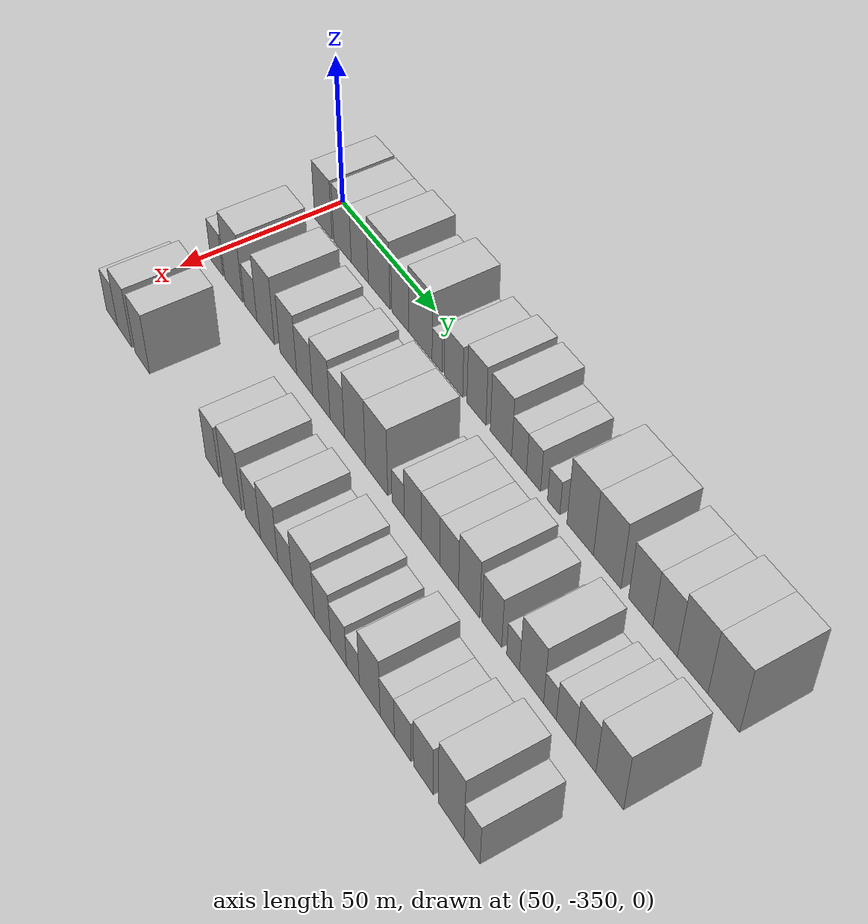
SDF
<sdf version="1.6">
 <world name="default">
  <model name="building_1">
   <static>1</static>
   <pose>50.0000 -343.0703 0 0.000000 0.000000 0.000000</pose>
   <link name="link">
    <pose>0 0 10.50 0 0 0</pose>
    <collision name="collision"><geometry><box><size>20.0000 9.8595 21.0000</size></box></geometry></collision>
    <visual name="visual">
     <cast_shadows>0</cast_shadows>
     <geometry><box><size>20.0000 9.8595 21.0000</size></box></geometry>
     <material>
      <script>
       <uri>model://HANNAS_wall/materials/scripts</uri>
       <uri>model://HANNAS_wall/materials/textures</uri>
       <name>vrc/HANNAS_wall</name>
      </script>
     </material>
    </visual>
   </link>
  </model>
  <model name="building_2">
   <static>1</static>
   <pose>50.0000 -332.2785 0 0.000000 0.000000 0.000000</pose>
   <link name="link">
    <pose>0 0 10.50 0 0 0</pose>
    <collision name="collision"><geometry><box><size>20.0000 9.7241 21.0000</size></box></geometry></collision>
    <visual name="visual">
     <cast_shadows>0</cast_shadows>
     <geometry><box><size>20.0000 9.7241 21.0000</size></box></geometry>
     <material>
      <script>
       <uri>model://HANNAS_wall/materials/scripts</uri>
       <uri>model://HANNAS_wall/materials/textures</uri>
       <name>vrc/HANNAS_wall</name>
      </script>
     </material>
    </visual>
   </link>
  </model>
  <model name="building_3">
   <static>1</static>
   <pose>50.0000 -322.7978 0 0.000000 0.000000 0.000000</pose>
   <link name="link">
    <pose>0 0 10.50 0 0 0</pose>
    <collision name="collision"><geometry><box><size>20.0000 9.2373 21.0000</size></box></geometry></collision>
    <visual name="visual">
     <cast_shadows>0</cast_shadows>
     <geometry><box><size>20.0000 9.2373 21.0000</size></box></geometry>
     <material>
      <script>
       <uri>model://HANNAS_wall/materials/scripts</uri>
       <uri>model://HANNAS_wall/materials/textures</uri>
       <name>vrc/HANNAS_wall</name>
      </script>
     </material>
    </visual>
   </link>
  </model>
  <model name="building_4">
   <static>1</static>
   <pose>50.0000 -312.4608 0 0.000000 0.000000 0.000000</pose>
   <link name="link">
    <pose>0 0 12.00 0 0 0</pose>
    <collision name="collision"><geometry><box><size>20.0000 11.4368 24.0000</size></box></geometry></collision>
    <visual name="visual">
     <cast_shadows>0</cast_shadows>
     <geometry><box><size>20.0000 11.4368 24.0000</size></box></geometry>
     <material>
      <script>
       <uri>model://HANNAS_wall/materials/scripts</uri>
       <uri>model://HANNAS_wall/materials/textures</uri>
       <name>vrc/HANNAS_wall</name>
      </script>
     </material>
    </visual>
   </link>
  </model>
  <model name="building_5">
   <static>1</static>
   <pose>50.0000 -301.3819 0 0.000000 0.000000 0.000000</pose>
   <link name="link">
    <pose>0 0 9.00 0 0 0</pose>
    <collision name="collision"><geometry><box><size>20.0000 8.7210 18.0000</size></box></geometry></collision>
    <visual name="visual">
     <cast_shadows>0</cast_shadows>
     <geometry><box><size>20.0000 8.7210 18.0000</size></box></geometry>
     <material>
      <script>
       <uri>model://HANNAS_wall/materials/scripts</uri>
       <uri>model://HANNAS_wall/materials/textures</uri>
       <name>vrc/HANNAS_wall</name>
      </script>
     </material>
    </visual>
   </link>
  </model>
  <model name="building_6">
   <static>1</static>
   <pose>50.0000 -291.1596 0 0.000000 0.000000 0.000000</pose>
   <link name="link">
    <pose>0 0 12.00 0 0 0</pose>
    <collision name="collision"><geometry><box><size>20.0000 11.7235 24.0000</size></box></geometry></collision>
    <visual name="visual">
     <cast_shadows>0</cast_shadows>
     <geometry><box><size>20.0000 11.7235 24.0000</size></box></geometry>
     <material>
      <script>
       <uri>model://HANNAS_wall/materials/scripts</uri>
       <uri>model://HANNAS_wall/materials/textures</uri>
       <name>vrc/HANNAS_wall</name>
      </script>
     </material>
    </visual>
   </link>
  </model>
  <model name="building_7">
   <static>1</static>
   <pose>50.0000 -282.7952 0 0.000000 0.000000 0.000000</pose>
   <link name="link">
    <pose>0 0 6.00 0 0 0</pose>
    <collision name="collision"><geometry><box><size>20.0000 5.0053 12.0000</size></box></geometry></collision>
    <visual name="visual">
     <cast_shadows>0</cast_shadows>
     <geometry><box><size>20.0000 5.0053 12.0000</size></box></geometry>
     <material>
      <script>
       <uri>model://HANNAS_wall/materials/scripts</uri>
       <uri>model://HANNAS_wall/materials/textures</uri>
       <name>vrc/HANNAS_wall</name>
      </script>
     </material>
    </visual>
   </link>
  </model>
  <model name="building_8">
   <static>1</static>
   <pose>50.0000 -274.8608 0 0.000000 0.000000 0.000000</pose>
   <link name="link">
    <pose>0 0 9.00 0 0 0</pose>
    <collision name="collision"><geometry><box><size>20.0000 8.8636 18.0000</size></box></geometry></collision>
    <visual name="visual">
     <cast_shadows>0</cast_shadows>
     <geometry><box><size>20.0000 8.8636 18.0000</size></box></geometry>
     <material>
      <script>
       <uri>model://HANNAS_wall/materials/scripts</uri>
       <uri>model://HANNAS_wall/materials/textures</uri>
       <name>vrc/HANNAS_wall</name>
      </script>
     </material>
    </visual>
   </link>
  </model>
  <model name="building_9">
   <static>1</static>
   <pose>50.0000 -263.9722 0 0.000000 0.000000 0.000000</pose>
   <link name="link">
    <pose>0 0 10.50 0 0 0</pose>
    <collision name="collision"><geometry><box><size>20.0000 8.9136 21.0000</size></box></geometry></collision>
    <visual name="visual">
     <cast_shadows>0</cast_shadows>
     <geometry><box><size>20.0000 8.9136 21.0000</size></box></geometry>
     <material>
      <script>
       <uri>model://HANNAS_wall/materials/scripts</uri>
       <uri>model://HANNAS_wall/materials/textures</uri>
       <name>vrc/HANNAS_wall</name>
      </script>
     </material>
    </visual>
   </link>
  </model>
  <model name="building_10">
   <static>1</static>
   <pose>50.0000 -252.6601 0 0.000000 0.000000 0.000000</pose>
   <link name="link">
    <pose>0 0 10.50 0 0 0</pose>
    <collision name="collision"><geometry><box><size>20.0000 9.7105 21.0000</size></box></geometry></collision>
    <visual name="visual">
     <cast_shadows>0</cast_shadows>
     <geometry><box><size>20.0000 9.7105 21.0000</size></box></geometry>
     <material>
      <script>
       <uri>model://HANNAS_wall/materials/scripts</uri>
       <uri>model://HANNAS_wall/materials/textures</uri>
       <name>vrc/HANNAS_wall</name>
      </script>
     </material>
    </visual>
   </link>
  </model>
  <model name="building_11">
   <static>1</static>
   <pose>50.0000 -244.5141 0 0.000000 0.000000 0.000000</pose>
   <link name="link">
    <pose>0 0 7.50 0 0 0</pose>
    <collision name="collision"><geometry><box><size>20.0000 6.5817 15.0000</size></box></geometry></collision>
    <visual name="visual">
     <cast_shadows>0</cast_shadows>
     <geometry><box><size>20.0000 6.5817 15.0000</size></box></geometry>
     <material>
      <script>
       <uri>model://HANNAS_wall/materials/scripts</uri>
       <uri>model://HANNAS_wall/materials/textures</uri>
       <name>vrc/HANNAS_wall</name>
      </script>
     </material>
    </visual>
   </link>
  </model>
  <model name="building_12">
   <static>1</static>
   <pose>50.0000 -238.1243 0 0.000000 0.000000 0.000000</pose>
   <link name="link">
    <pose>0 0 7.50 0 0 0</pose>
    <collision name="collision"><geometry><box><size>20.0000 6.1979 15.0000</size></box></geometry></collision>
    <visual name="visual">
     <cast_shadows>0</cast_shadows>
     <geometry><box><size>20.0000 6.1979 15.0000</size></box></geometry>
     <material>
      <script>
       <uri>model://HANNAS_wall/materials/scripts</uri>
       <uri>model://HANNAS_wall/materials/textures</uri>
       <name>vrc/HANNAS_wall</name>
      </script>
     </material>
    </visual>
   </link>
  </model>
  <model name="building_13">
   <static>1</static>
   <pose>50.0000 -229.4065 0 0.000000 0.000000 0.000000</pose>
   <link name="link">
    <pose>0 0 6.00 0 0 0</pose>
    <collision name="collision"><geometry><box><size>20.0000 5.2378 12.0000</size></box></geometry></collision>
    <visual name="visual">
     <cast_shadows>0</cast_shadows>
     <geometry><box><size>20.0000 5.2378 12.0000</size></box></geometry>
     <material>
      <script>
       <uri>model://HANNAS_wall/materials/scripts</uri>
       <uri>model://HANNAS_wall/materials/textures</uri>
       <name>vrc/HANNAS_wall</name>
      </script>
     </material>
    </visual>
   </link>
  </model>
  <model name="building_14">
   <static>1</static>
   <pose>50.0000 -218.2956 0 0.000000 0.000000 0.000000</pose>
   <link name="link">
    <pose>0 0 12.00 0 0 0</pose>
    <collision name="collision"><geometry><box><size>20.0000 10.9840 24.0000</size></box></geometry></collision>
    <visual name="visual">
     <cast_shadows>0</cast_shadows>
     <geometry><box><size>20.0000 10.9840 24.0000</size></box></geometry>
     <material>
      <script>
       <uri>model://HANNAS_wall/materials/scripts</uri>
       <uri>model://HANNAS_wall/materials/textures</uri>
       <name>vrc/HANNAS_wall</name>
      </script>
     </material>
    </visual>
   </link>
  </model>
  <model name="building_15">
   <static>1</static>
   <pose>50.0000 -207.2777 0 0.000000 0.000000 0.000000</pose>
   <link name="link">
    <pose>0 0 12.00 0 0 0</pose>
    <collision name="collision"><geometry><box><size>20.0000 11.0517 24.0000</size></box></geometry></collision>
    <visual name="visual">
     <cast_shadows>0</cast_shadows>
     <geometry><box><size>20.0000 11.0517 24.0000</size></box></geometry>
     <material>
      <script>
       <uri>model://HANNAS_wall/materials/scripts</uri>
       <uri>model://HANNAS_wall/materials/textures</uri>
       <name>vrc/HANNAS_wall</name>
      </script>
     </material>
    </visual>
   </link>
  </model>
  <model name="building_16">
   <static>1</static>
   <pose>50.0000 -194.0915 0 0.000000 0.000000 0.000000</pose>
   <link name="link">
    <pose>0 0 10.50 0 0 0</pose>
    <collision name="collision"><geometry><box><size>20.0000 9.3208 21.0000</size></box></geometry></collision>
    <visual name="visual">
     <cast_shadows>0</cast_shadows>
     <geometry><box><size>20.0000 9.3208 21.0000</size></box></geometry>
     <material>
      <script>
       <uri>model://HANNAS_wall/materials/scripts</uri>
       <uri>model://HANNAS_wall/materials/textures</uri>
       <name>vrc/HANNAS_wall</name>
      </script>
     </material>
    </visual>
   </link>
  </model>
  <model name="building_17">
   <static>1</static>
   <pose>50.0000 -184.8007 0 0.000000 0.000000 0.000000</pose>
   <link name="link">
    <pose>0 0 10.50 0 0 0</pose>
    <collision name="collision"><geometry><box><size>20.0000 9.2608 21.0000</size></box></geometry></collision>
    <visual name="visual">
     <cast_shadows>0</cast_shadows>
     <geometry><box><size>20.0000 9.2608 21.0000</size></box></geometry>
     <material>
      <script>
       <uri>model://HANNAS_wall/materials/scripts</uri>
       <uri>model://HANNAS_wall/materials/textures</uri>
       <name>vrc/HANNAS_wall</name>
      </script>
     </material>
    </visual>
   </link>
  </model>
  <model name="building_18">
   <static>1</static>
   <pose>50.0000 -174.6020 0 0.000000 0.000000 0.000000</pose>
   <link name="link">
    <pose>0 0 12.00 0 0 0</pose>
    <collision name="collision"><geometry><box><size>20.0000 11.1366 24.0000</size></box></geometry></collision>
    <visual name="visual">
     <cast_shadows>0</cast_shadows>
     <geometry><box><size>20.0000 11.1366 24.0000</size></box></geometry>
     <material>
      <script>
       <uri>model://HANNAS_wall/materials/scripts</uri>
       <uri>model://HANNAS_wall/materials/textures</uri>
       <name>vrc/HANNAS_wall</name>
      </script>
     </material>
    </visual>
   </link>
  </model>
  <model name="building_19">
   <static>1</static>
   <pose>50.0000 -163.4128 0 0.000000 0.000000 0.000000</pose>
   <link name="link">
    <pose>0 0 12.00 0 0 0</pose>
    <collision name="collision"><geometry><box><size>20.0000 11.2418 24.0000</size></box></geometry></collision>
    <visual name="visual">
     <cast_shadows>0</cast_shadows>
     <geometry><box><size>20.0000 11.2418 24.0000</size></box></geometry>
     <material>
      <script>
       <uri>model://HANNAS_wall/materials/scripts</uri>
       <uri>model://HANNAS_wall/materials/textures</uri>
       <name>vrc/HANNAS_wall</name>
      </script>
     </material>
    </visual>
   </link>
  </model>
  <model name="building_77">
   <static>1</static>
   <pose>82.0000 -344.3232 0 0.000000 0.000000 0.000000</pose>
   <link name="link">
    <pose>0 0 7.50 0 0 0</pose>
    <collision name="collision"><geometry><box><size>20.0000 7.3536 15.0000</size></box></geometry></collision>
    <visual name="visual">
     <cast_shadows>0</cast_shadows>
     <geometry><box><size>20.0000 7.3536 15.0000</size></box></geometry>
     <material>
      <script>
       <uri>model://HANNAS_wall/materials/scripts</uri>
       <uri>model://HANNAS_wall/materials/textures</uri>
       <name>vrc/HANNAS_wall</name>
      </script>
     </material>
    </visual>
   </link>
  </model>
  <model name="building_78">
   <static>1</static>
   <pose>82.0000 -334.3234 0 0.000000 0.000000 0.000000</pose>
   <link name="link">
    <pose>0 0 12.00 0 0 0</pose>
    <collision name="collision"><geometry><box><size>20.0000 10.6460 24.0000</size></box></geometry></collision>
    <visual name="visual">
     <cast_shadows>0</cast_shadows>
     <geometry><box><size>20.0000 10.6460 24.0000</size></box></geometry>
     <material>
      <script>
       <uri>model://HANNAS_wall/materials/scripts</uri>
       <uri>model://HANNAS_wall/materials/textures</uri>
       <name>vrc/HANNAS_wall</name>
      </script>
     </material>
    </visual>
   </link>
  </model>
  <model name="building_79">
   <static>1</static>
   <pose>82.0000 -324.4425 0 0.000000 0.000000 0.000000</pose>
   <link name="link">
    <pose>0 0 7.50 0 0 0</pose>
    <collision name="collision"><geometry><box><size>20.0000 7.1158 15.0000</size></box></geometry></collision>
    <visual name="visual">
     <cast_shadows>0</cast_shadows>
     <geometry><box><size>20.0000 7.1158 15.0000</size></box></geometry>
     <material>
      <script>
       <uri>model://HANNAS_wall/materials/scripts</uri>
       <uri>model://HANNAS_wall/materials/textures</uri>
       <name>vrc/HANNAS_wall</name>
      </script>
     </material>
    </visual>
   </link>
  </model>
  <model name="building_80">
   <static>1</static>
   <pose>82.0000 -315.9269 0 0.000000 0.000000 0.000000</pose>
   <link name="link">
    <pose>0 0 12.00 0 0 0</pose>
    <collision name="collision"><geometry><box><size>20.0000 9.9154 24.0000</size></box></geometry></collision>
    <visual name="visual">
     <cast_shadows>0</cast_shadows>
     <geometry><box><size>20.0000 9.9154 24.0000</size></box></geometry>
     <material>
      <script>
       <uri>model://HANNAS_wall/materials/scripts</uri>
       <uri>model://HANNAS_wall/materials/textures</uri>
       <name>vrc/HANNAS_wall</name>
      </script>
     </material>
    </visual>
   </link>
  </model>
  <model name="building_81">
   <static>1</static>
   <pose>82.0000 -303.4407 0 0.000000 0.000000 0.000000</pose>
   <link name="link">
    <pose>0 0 10.50 0 0 0</pose>
    <collision name="collision"><geometry><box><size>20.0000 9.0570 21.0000</size></box></geometry></collision>
    <visual name="visual">
     <cast_shadows>0</cast_shadows>
     <geometry><box><size>20.0000 9.0570 21.0000</size></box></geometry>
     <material>
      <script>
       <uri>model://HANNAS_wall/materials/scripts</uri>
       <uri>model://HANNAS_wall/materials/textures</uri>
       <name>vrc/HANNAS_wall</name>
      </script>
     </material>
    </visual>
   </link>
  </model>
  <model name="building_82">
   <static>1</static>
   <pose>82.0000 -294.6639 0 0.000000 0.000000 0.000000</pose>
   <link name="link">
    <pose>0 0 9.00 0 0 0</pose>
    <collision name="collision"><geometry><box><size>20.0000 8.4966 18.0000</size></box></geometry></collision>
    <visual name="visual">
     <cast_shadows>0</cast_shadows>
     <geometry><box><size>20.0000 8.4966 18.0000</size></box></geometry>
     <material>
      <script>
       <uri>model://HANNAS_wall/materials/scripts</uri>
       <uri>model://HANNAS_wall/materials/textures</uri>
       <name>vrc/HANNAS_wall</name>
      </script>
     </material>
    </visual>
   </link>
  </model>
  <model name="building_83">
   <static>1</static>
   <pose>82.0000 -285.8758 0 0.000000 0.000000 0.000000</pose>
   <link name="link">
    <pose>0 0 10.50 0 0 0</pose>
    <collision name="collision"><geometry><box><size>20.0000 9.0797 21.0000</size></box></geometry></collision>
    <visual name="visual">
     <cast_shadows>0</cast_shadows>
     <geometry><box><size>20.0000 9.0797 21.0000</size></box></geometry>
     <material>
      <script>
       <uri>model://HANNAS_wall/materials/scripts</uri>
       <uri>model://HANNAS_wall/materials/textures</uri>
       <name>vrc/HANNAS_wall</name>
      </script>
     </material>
    </visual>
   </link>
  </model>
  <model name="building_84">
   <static>1</static>
   <pose>82.0000 -277.6684 0 0.000000 0.000000 0.000000</pose>
   <link name="link">
    <pose>0 0 9.00 0 0 0</pose>
    <collision name="collision"><geometry><box><size>20.0000 7.3350 18.0000</size></box></geometry></collision>
    <visual name="visual">
     <cast_shadows>0</cast_shadows>
     <geometry><box><size>20.0000 7.3350 18.0000</size></box></geometry>
     <material>
      <script>
       <uri>model://HANNAS_wall/materials/scripts</uri>
       <uri>model://HANNAS_wall/materials/textures</uri>
       <name>vrc/HANNAS_wall</name>
      </script>
     </material>
    </visual>
   </link>
  </model>
  <model name="building_85">
   <static>1</static>
   <pose>82.0000 -268.7674 0 0.000000 0.000000 0.000000</pose>
   <link name="link">
    <pose>0 0 12.00 0 0 0</pose>
    <collision name="collision"><geometry><box><size>20.0000 10.4669 24.0000</size></box></geometry></collision>
    <visual name="visual">
     <cast_shadows>0</cast_shadows>
     <geometry><box><size>20.0000 10.4669 24.0000</size></box></geometry>
     <material>
      <script>
       <uri>model://HANNAS_wall/materials/scripts</uri>
       <uri>model://HANNAS_wall/materials/textures</uri>
       <name>vrc/HANNAS_wall</name>
      </script>
     </material>
    </visual>
   </link>
  </model>
  <model name="building_86">
   <static>1</static>
   <pose>82.0000 -258.1873 0 0.000000 0.000000 0.000000</pose>
   <link name="link">
    <pose>0 0 12.00 0 0 0</pose>
    <collision name="collision"><geometry><box><size>20.0000 10.6932 24.0000</size></box></geometry></collision>
    <visual name="visual">
     <cast_shadows>0</cast_shadows>
     <geometry><box><size>20.0000 10.6932 24.0000</size></box></geometry>
     <material>
      <script>
       <uri>model://HANNAS_wall/materials/scripts</uri>
       <uri>model://HANNAS_wall/materials/textures</uri>
       <name>vrc/HANNAS_wall</name>
      </script>
     </material>
    </visual>
   </link>
  </model>
  <model name="building_87">
   <static>1</static>
   <pose>82.0000 -247.9619 0 0.000000 0.000000 0.000000</pose>
   <link name="link">
    <pose>0 0 6.00 0 0 0</pose>
    <collision name="collision"><geometry><box><size>20.0000 5.7576 12.0000</size></box></geometry></collision>
    <visual name="visual">
     <cast_shadows>0</cast_shadows>
     <geometry><box><size>20.0000 5.7576 12.0000</size></box></geometry>
     <material>
      <script>
       <uri>model://HANNAS_wall/materials/scripts</uri>
       <uri>model://HANNAS_wall/materials/textures</uri>
       <name>vrc/HANNAS_wall</name>
      </script>
     </material>
    </visual>
   </link>
  </model>
  <model name="building_88">
   <static>1</static>
   <pose>82.0000 -241.1539 0 0.000000 0.000000 0.000000</pose>
   <link name="link">
    <pose>0 0 9.00 0 0 0</pose>
    <collision name="collision"><geometry><box><size>20.0000 7.8585 18.0000</size></box></geometry></collision>
    <visual name="visual">
     <cast_shadows>0</cast_shadows>
     <geometry><box><size>20.0000 7.8585 18.0000</size></box></geometry>
     <material>
      <script>
       <uri>model://HANNAS_wall/materials/scripts</uri>
       <uri>model://HANNAS_wall/materials/textures</uri>
       <name>vrc/HANNAS_wall</name>
      </script>
     </material>
    </visual>
   </link>
  </model>
  <model name="building_89">
   <static>1</static>
   <pose>82.0000 -233.0622 0 0.000000 0.000000 0.000000</pose>
   <link name="link">
    <pose>0 0 9.00 0 0 0</pose>
    <collision name="collision"><geometry><box><size>20.0000 8.3249 18.0000</size></box></geometry></collision>
    <visual name="visual">
     <cast_shadows>0</cast_shadows>
     <geometry><box><size>20.0000 8.3249 18.0000</size></box></geometry>
     <material>
      <script>
       <uri>model://HANNAS_wall/materials/scripts</uri>
       <uri>model://HANNAS_wall/materials/textures</uri>
       <name>vrc/HANNAS_wall</name>
      </script>
     </material>
    </visual>
   </link>
  </model>
  <model name="building_90">
   <static>1</static>
   <pose>82.0000 -224.7668 0 0.000000 0.000000 0.000000</pose>
   <link name="link">
    <pose>0 0 9.00 0 0 0</pose>
    <collision name="collision"><geometry><box><size>20.0000 8.2658 18.0000</size></box></geometry></collision>
    <visual name="visual">
     <cast_shadows>0</cast_shadows>
     <geometry><box><size>20.0000 8.2658 18.0000</size></box></geometry>
     <material>
      <script>
       <uri>model://HANNAS_wall/materials/scripts</uri>
       <uri>model://HANNAS_wall/materials/textures</uri>
       <name>vrc/HANNAS_wall</name>
      </script>
     </material>
    </visual>
   </link>
  </model>
  <model name="building_91">
   <static>1</static>
   <pose>82.0000 -216.1169 0 0.000000 0.000000 0.000000</pose>
   <link name="link">
    <pose>0 0 10.50 0 0 0</pose>
    <collision name="collision"><geometry><box><size>20.0000 9.0340 21.0000</size></box></geometry></collision>
    <visual name="visual">
     <cast_shadows>0</cast_shadows>
     <geometry><box><size>20.0000 9.0340 21.0000</size></box></geometry>
     <material>
      <script>
       <uri>model://HANNAS_wall/materials/scripts</uri>
       <uri>model://HANNAS_wall/materials/textures</uri>
       <name>vrc/HANNAS_wall</name>
      </script>
     </material>
    </visual>
   </link>
  </model>
  <model name="building_92">
   <static>1</static>
   <pose>82.0000 -206.4828 0 0.000000 0.000000 0.000000</pose>
   <link name="link">
    <pose>0 0 9.00 0 0 0</pose>
    <collision name="collision"><geometry><box><size>20.0000 8.2342 18.0000</size></box></geometry></collision>
    <visual name="visual">
     <cast_shadows>0</cast_shadows>
     <geometry><box><size>20.0000 8.2342 18.0000</size></box></geometry>
     <material>
      <script>
       <uri>model://HANNAS_wall/materials/scripts</uri>
       <uri>model://HANNAS_wall/materials/textures</uri>
       <name>vrc/HANNAS_wall</name>
      </script>
     </material>
    </visual>
   </link>
  </model>
  <model name="building_93">
   <static>1</static>
   <pose>82.0000 -197.7329 0 0.000000 0.000000 0.000000</pose>
   <link name="link">
    <pose>0 0 6.00 0 0 0</pose>
    <collision name="collision"><geometry><box><size>20.0000 5.2657 12.0000</size></box></geometry></collision>
    <visual name="visual">
     <cast_shadows>0</cast_shadows>
     <geometry><box><size>20.0000 5.2657 12.0000</size></box></geometry>
     <material>
      <script>
       <uri>model://HANNAS_wall/materials/scripts</uri>
       <uri>model://HANNAS_wall/materials/textures</uri>
       <name>vrc/HANNAS_wall</name>
      </script>
     </material>
    </visual>
   </link>
  </model>
  <model name="building_94">
   <static>1</static>
   <pose>82.0000 -190.3103 0 0.000000 0.000000 0.000000</pose>
   <link name="link">
    <pose>0 0 10.50 0 0 0</pose>
    <collision name="collision"><geometry><box><size>20.0000 9.5794 21.0000</size></box></geometry></collision>
    <visual name="visual">
     <cast_shadows>0</cast_shadows>
     <geometry><box><size>20.0000 9.5794 21.0000</size></box></geometry>
     <material>
      <script>
       <uri>model://HANNAS_wall/materials/scripts</uri>
       <uri>model://HANNAS_wall/materials/textures</uri>
       <name>vrc/HANNAS_wall</name>
      </script>
     </material>
    </visual>
   </link>
  </model>
  <model name="building_95">
   <static>1</static>
   <pose>82.0000 -183.0500 0 0.000000 0.000000 0.000000</pose>
   <link name="link">
    <pose>0 0 6.00 0 0 0</pose>
    <collision name="collision"><geometry><box><size>20.0000 4.9412 12.0000</size></box></geometry></collision>
    <visual name="visual">
     <cast_shadows>0</cast_shadows>
     <geometry><box><size>20.0000 4.9412 12.0000</size></box></geometry>
     <material>
      <script>
       <uri>model://HANNAS_wall/materials/scripts</uri>
       <uri>model://HANNAS_wall/materials/textures</uri>
       <name>vrc/HANNAS_wall</name>
      </script>
     </material>
    </visual>
   </link>
  </model>
  <model name="building_96">
   <static>1</static>
   <pose>82.0000 -176.9291 0 0.000000 0.000000 0.000000</pose>
   <link name="link">
    <pose>0 0 7.50 0 0 0</pose>
    <collision name="collision"><geometry><box><size>20.0000 7.3008 15.0000</size></box></geometry></collision>
    <visual name="visual">
     <cast_shadows>0</cast_shadows>
     <geometry><box><size>20.0000 7.3008 15.0000</size></box></geometry>
     <material>
      <script>
       <uri>model://HANNAS_wall/materials/scripts</uri>
       <uri>model://HANNAS_wall/materials/textures</uri>
       <name>vrc/HANNAS_wall</name>
      </script>
     </material>
    </visual>
   </link>
  </model>
  <model name="building_97">
   <static>1</static>
   <pose>82.0000 -169.4720 0 0.000000 0.000000 0.000000</pose>
   <link name="link">
    <pose>0 0 9.00 0 0 0</pose>
    <collision name="collision"><geometry><box><size>20.0000 7.6135 18.0000</size></box></geometry></collision>
    <visual name="visual">
     <cast_shadows>0</cast_shadows>
     <geometry><box><size>20.0000 7.6135 18.0000</size></box></geometry>
     <material>
      <script>
       <uri>model://HANNAS_wall/materials/scripts</uri>
       <uri>model://HANNAS_wall/materials/textures</uri>
       <name>vrc/HANNAS_wall</name>
      </script>
     </material>
    </visual>
   </link>
  </model>
  <model name="building_98">
   <static>1</static>
   <pose>82.0000 -160.6134 0 0.000000 0.000000 0.000000</pose>
   <link name="link">
    <pose>0 0 10.50 0 0 0</pose>
    <collision name="collision"><geometry><box><size>20.0000 10.1037 21.0000</size></box></geometry></collision>
    <visual name="visual">
     <cast_shadows>0</cast_shadows>
     <geometry><box><size>20.0000 10.1037 21.0000</size></box></geometry>
     <material>
      <script>
       <uri>model://HANNAS_wall/materials/scripts</uri>
       <uri>model://HANNAS_wall/materials/textures</uri>
       <name>vrc/HANNAS_wall</name>
      </script>
     </material>
    </visual>
   </link>
  </model>
  <model name="building_157">
   <static>1</static>
   <pose>114.0000 -341.4536 0 0.000000 0.000000 0.000000</pose>
   <link name="link">
    <pose>0 0 7.50 0 0 0</pose>
    <collision name="collision"><geometry><box><size>20.0000 7.0928 15.0000</size></box></geometry></collision>
    <visual name="visual">
     <cast_shadows>0</cast_shadows>
     <geometry><box><size>20.0000 7.0928 15.0000</size></box></geometry>
     <material>
      <script>
       <uri>model://HANNAS_wall/materials/scripts</uri>
       <uri>model://HANNAS_wall/materials/textures</uri>
       <name>vrc/HANNAS_wall</name>
      </script>
     </material>
    </visual>
   </link>
  </model>
  <model name="building_158">
   <static>1</static>
   <pose>114.0000 -333.4847 0 0.000000 0.000000 0.000000</pose>
   <link name="link">
    <pose>0 0 10.50 0 0 0</pose>
    <collision name="collision"><geometry><box><size>20.0000 8.8449 21.0000</size></box></geometry></collision>
    <visual name="visual">
     <cast_shadows>0</cast_shadows>
     <geometry><box><size>20.0000 8.8449 21.0000</size></box></geometry>
     <material>
      <script>
       <uri>model://HANNAS_wall/materials/scripts</uri>
       <uri>model://HANNAS_wall/materials/textures</uri>
       <name>vrc/HANNAS_wall</name>
      </script>
     </material>
    </visual>
   </link>
  </model>
  <model name="building_159">
   <static>1</static>
   <pose>114.0000 -322.6688 0 0.000000 0.000000 0.000000</pose>
   <link name="link">
    <pose>0 0 10.50 0 0 0</pose>
    <collision name="collision"><geometry><box><size>20.0000 8.7870 21.0000</size></box></geometry></collision>
    <visual name="visual">
     <cast_shadows>0</cast_shadows>
     <geometry><box><size>20.0000 8.7870 21.0000</size></box></geometry>
     <material>
      <script>
       <uri>model://HANNAS_wall/materials/scripts</uri>
       <uri>model://HANNAS_wall/materials/textures</uri>
       <name>vrc/HANNAS_wall</name>
      </script>
     </material>
    </visual>
   </link>
  </model>
  <model name="building_160">
   <static>1</static>
   <pose>114.0000 -282.3693 0 0.000000 0.000000 0.000000</pose>
   <link name="link">
    <pose>0 0 9.00 0 0 0</pose>
    <collision name="collision"><geometry><box><size>20.0000 7.2706 18.0000</size></box></geometry></collision>
    <visual name="visual">
     <cast_shadows>0</cast_shadows>
     <geometry><box><size>20.0000 7.2706 18.0000</size></box></geometry>
     <material>
      <script>
       <uri>model://HANNAS_wall/materials/scripts</uri>
       <uri>model://HANNAS_wall/materials/textures</uri>
       <name>vrc/HANNAS_wall</name>
      </script>
     </material>
    </visual>
   </link>
  </model>
  <model name="building_161">
   <static>1</static>
   <pose>114.0000 -271.7378 0 0.000000 0.000000 0.000000</pose>
   <link name="link">
    <pose>0 0 10.50 0 0 0</pose>
    <collision name="collision"><geometry><box><size>20.0000 9.9924 21.0000</size></box></geometry></collision>
    <visual name="visual">
     <cast_shadows>0</cast_shadows>
     <geometry><box><size>20.0000 9.9924 21.0000</size></box></geometry>
     <material>
      <script>
       <uri>model://HANNAS_wall/materials/scripts</uri>
       <uri>model://HANNAS_wall/materials/textures</uri>
       <name>vrc/HANNAS_wall</name>
      </script>
     </material>
    </visual>
   </link>
  </model>
  <model name="building_162">
   <static>1</static>
   <pose>114.0000 -260.8613 0 0.000000 0.000000 0.000000</pose>
   <link name="link">
    <pose>0 0 9.00 0 0 0</pose>
    <collision name="collision"><geometry><box><size>20.0000 7.7604 18.0000</size></box></geometry></collision>
    <visual name="visual">
     <cast_shadows>0</cast_shadows>
     <geometry><box><size>20.0000 7.7604 18.0000</size></box></geometry>
     <material>
      <script>
       <uri>model://HANNAS_wall/materials/scripts</uri>
       <uri>model://HANNAS_wall/materials/textures</uri>
       <name>vrc/HANNAS_wall</name>
      </script>
     </material>
    </visual>
   </link>
  </model>
  <model name="building_163">
   <static>1</static>
   <pose>114.0000 -252.6348 0 0.000000 0.000000 0.000000</pose>
   <link name="link">
    <pose>0 0 10.50 0 0 0</pose>
    <collision name="collision"><geometry><box><size>20.0000 8.6926 21.0000</size></box></geometry></collision>
    <visual name="visual">
     <cast_shadows>0</cast_shadows>
     <geometry><box><size>20.0000 8.6926 21.0000</size></box></geometry>
     <material>
      <script>
       <uri>model://HANNAS_wall/materials/scripts</uri>
       <uri>model://HANNAS_wall/materials/textures</uri>
       <name>vrc/HANNAS_wall</name>
      </script>
     </material>
    </visual>
   </link>
  </model>
  <model name="building_164">
   <static>1</static>
   <pose>114.0000 -244.6727 0 0.000000 0.000000 0.000000</pose>
   <link name="link">
    <pose>0 0 7.50 0 0 0</pose>
    <collision name="collision"><geometry><box><size>20.0000 7.2317 15.0000</size></box></geometry></collision>
    <visual name="visual">
     <cast_shadows>0</cast_shadows>
     <geometry><box><size>20.0000 7.2317 15.0000</size></box></geometry>
     <material>
      <script>
       <uri>model://HANNAS_wall/materials/scripts</uri>
       <uri>model://HANNAS_wall/materials/textures</uri>
       <name>vrc/HANNAS_wall</name>
      </script>
     </material>
    </visual>
   </link>
  </model>
  <model name="building_165">
   <static>1</static>
   <pose>114.0000 -235.8296 0 0.000000 0.000000 0.000000</pose>
   <link name="link">
    <pose>0 0 10.50 0 0 0</pose>
    <collision name="collision"><geometry><box><size>20.0000 10.4544 21.0000</size></box></geometry></collision>
    <visual name="visual">
     <cast_shadows>0</cast_shadows>
     <geometry><box><size>20.0000 10.4544 21.0000</size></box></geometry>
     <material>
      <script>
       <uri>model://HANNAS_wall/materials/scripts</uri>
       <uri>model://HANNAS_wall/materials/textures</uri>
       <name>vrc/HANNAS_wall</name>
      </script>
     </material>
    </visual>
   </link>
  </model>
  <model name="building_166">
   <static>1</static>
   <pose>114.0000 -226.8639 0 0.000000 0.000000 0.000000</pose>
   <link name="link">
    <pose>0 0 9.00 0 0 0</pose>
    <collision name="collision"><geometry><box><size>20.0000 7.4770 18.0000</size></box></geometry></collision>
    <visual name="visual">
     <cast_shadows>0</cast_shadows>
     <geometry><box><size>20.0000 7.4770 18.0000</size></box></geometry>
     <material>
      <script>
       <uri>model://HANNAS_wall/materials/scripts</uri>
       <uri>model://HANNAS_wall/materials/textures</uri>
       <name>vrc/HANNAS_wall</name>
      </script>
     </material>
    </visual>
   </link>
  </model>
  <model name="building_167">
   <static>1</static>
   <pose>114.0000 -219.5220 0 0.000000 0.000000 0.000000</pose>
   <link name="link">
    <pose>0 0 7.50 0 0 0</pose>
    <collision name="collision"><geometry><box><size>20.0000 7.2069 15.0000</size></box></geometry></collision>
    <visual name="visual">
     <cast_shadows>0</cast_shadows>
     <geometry><box><size>20.0000 7.2069 15.0000</size></box></geometry>
     <material>
      <script>
       <uri>model://HANNAS_wall/materials/scripts</uri>
       <uri>model://HANNAS_wall/materials/textures</uri>
       <name>vrc/HANNAS_wall</name>
      </script>
     </material>
    </visual>
   </link>
  </model>
  <model name="building_168">
   <static>1</static>
   <pose>114.0000 -213.0161 0 0.000000 0.000000 0.000000</pose>
   <link name="link">
    <pose>0 0 6.00 0 0 0</pose>
    <collision name="collision"><geometry><box><size>20.0000 5.8049 12.0000</size></box></geometry></collision>
    <visual name="visual">
     <cast_shadows>0</cast_shadows>
     <geometry><box><size>20.0000 5.8049 12.0000</size></box></geometry>
     <material>
      <script>
       <uri>model://HANNAS_wall/materials/scripts</uri>
       <uri>model://HANNAS_wall/materials/textures</uri>
       <name>vrc/HANNAS_wall</name>
      </script>
     </material>
    </visual>
   </link>
  </model>
  <model name="building_169">
   <static>1</static>
   <pose>114.0000 -205.5897 0 0.000000 0.000000 0.000000</pose>
   <link name="link">
    <pose>0 0 10.50 0 0 0</pose>
    <collision name="collision"><geometry><box><size>20.0000 9.0478 21.0000</size></box></geometry></collision>
    <visual name="visual">
     <cast_shadows>0</cast_shadows>
     <geometry><box><size>20.0000 9.0478 21.0000</size></box></geometry>
     <material>
      <script>
       <uri>model://HANNAS_wall/materials/scripts</uri>
       <uri>model://HANNAS_wall/materials/textures</uri>
       <name>vrc/HANNAS_wall</name>
      </script>
     </material>
    </visual>
   </link>
  </model>
  <model name="building_170">
   <static>1</static>
   <pose>114.0000 -198.0207 0 0.000000 0.000000 0.000000</pose>
   <link name="link">
    <pose>0 0 7.50 0 0 0</pose>
    <collision name="collision"><geometry><box><size>20.0000 6.0903 15.0000</size></box></geometry></collision>
    <visual name="visual">
     <cast_shadows>0</cast_shadows>
     <geometry><box><size>20.0000 6.0903 15.0000</size></box></geometry>
     <material>
      <script>
       <uri>model://HANNAS_wall/materials/scripts</uri>
       <uri>model://HANNAS_wall/materials/textures</uri>
       <name>vrc/HANNAS_wall</name>
      </script>
     </material>
    </visual>
   </link>
  </model>
  <model name="building_171">
   <static>1</static>
   <pose>114.0000 -191.4757 0 0.000000 0.000000 0.000000</pose>
   <link name="link">
    <pose>0 0 7.50 0 0 0</pose>
    <collision name="collision"><geometry><box><size>20.0000 6.9996 15.0000</size></box></geometry></collision>
    <visual name="visual">
     <cast_shadows>0</cast_shadows>
     <geometry><box><size>20.0000 6.9996 15.0000</size></box></geometry>
     <material>
      <script>
       <uri>model://HANNAS_wall/materials/scripts</uri>
       <uri>model://HANNAS_wall/materials/textures</uri>
       <name>vrc/HANNAS_wall</name>
      </script>
     </material>
    </visual>
   </link>
  </model>
  <model name="building_172">
   <static>1</static>
   <pose>114.0000 -182.9357 0 0.000000 0.000000 0.000000</pose>
   <link name="link">
    <pose>0 0 9.00 0 0 0</pose>
    <collision name="collision"><geometry><box><size>20.0000 8.0805 18.0000</size></box></geometry></collision>
    <visual name="visual">
     <cast_shadows>0</cast_shadows>
     <geometry><box><size>20.0000 8.0805 18.0000</size></box></geometry>
     <material>
      <script>
       <uri>model://HANNAS_wall/materials/scripts</uri>
       <uri>model://HANNAS_wall/materials/textures</uri>
       <name>vrc/HANNAS_wall</name>
      </script>
     </material>
    </visual>
   </link>
  </model>
  <model name="building_173">
   <static>1</static>
   <pose>114.0000 -171.8140 0 0.000000 0.000000 0.000000</pose>
   <link name="link">
    <pose>0 0 12.00 0 0 0</pose>
    <collision name="collision"><geometry><box><size>20.0000 10.1627 24.0000</size></box></geometry></collision>
    <visual name="visual">
     <cast_shadows>0</cast_shadows>
     <geometry><box><size>20.0000 10.1627 24.0000</size></box></geometry>
     <material>
      <script>
       <uri>model://HANNAS_wall/materials/scripts</uri>
       <uri>model://HANNAS_wall/materials/textures</uri>
       <name>vrc/HANNAS_wall</name>
      </script>
     </material>
    </visual>
   </link>
  </model>
  <model name="building_174">
   <static>1</static>
   <pose>114.0000 -163.6749 0 0.000000 0.000000 0.000000</pose>
   <link name="link">
    <pose>0 0 7.50 0 0 0</pose>
    <collision name="collision"><geometry><box><size>20.0000 6.1156 15.0000</size></box></geometry></collision>
    <visual name="visual">
     <cast_shadows>0</cast_shadows>
     <geometry><box><size>20.0000 6.1156 15.0000</size></box></geometry>
     <material>
      <script>
       <uri>model://HANNAS_wall/materials/scripts</uri>
       <uri>model://HANNAS_wall/materials/textures</uri>
       <name>vrc/HANNAS_wall</name>
      </script>
     </material>
    </visual>
   </link>
  </model>
 </world>
</sdf>
